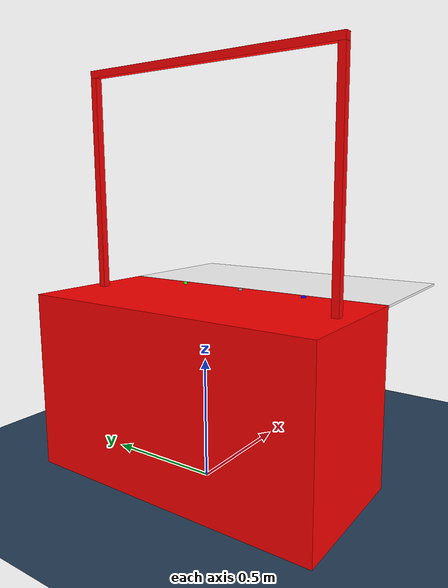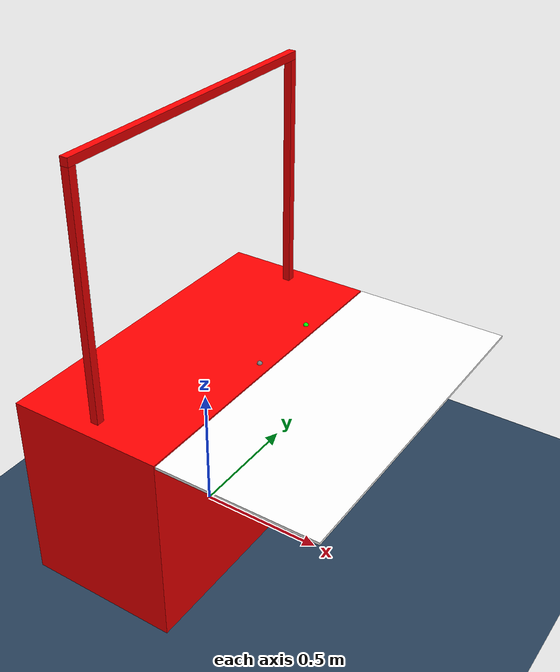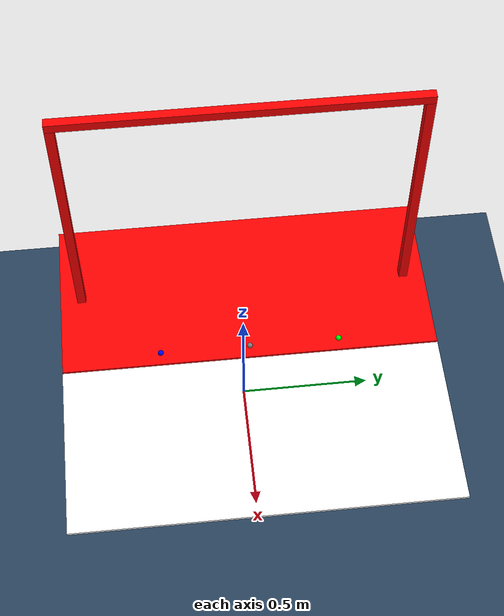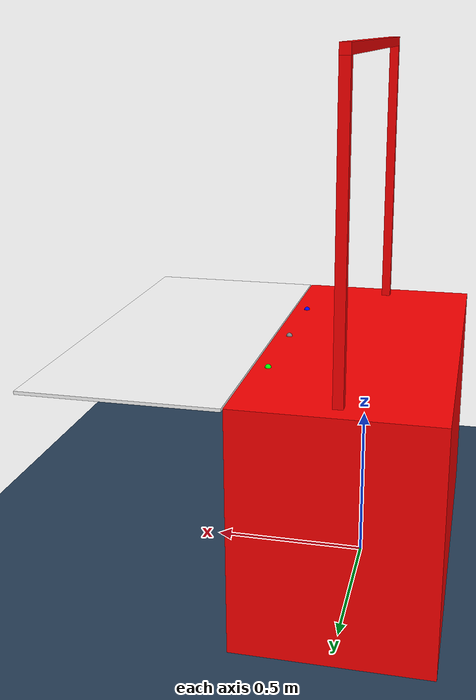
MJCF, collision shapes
<mujoco model="onshape">
  <compiler angle="radian" meshdir="assets"/>

  <visual>
    <headlight diffuse="0.6 0.6 0.6" ambient="0.3 0.3 0.3" specular="0 0 0"/>
    <rgba haze="0.15 0.25 0.35 1"/>
    <global azimuth="120" elevation="-20" offwidth="1920" offheight="1080"/>
    <scale contactwidth="0.075" contactheight="0.025" forcewidth="0.05" com="0.05" framewidth="0.01" framelength="0.2"/>
  </visual>

  <asset>
    <mesh name="base_visual_gate" file="base_visual_gate.stl"/>
    <texture type="skybox" builtin="gradient" rgb1="0.3 0.5 0.7" rgb2="0 0 0" width="512" height="3072"/>
    <texture type="2d" name="groundplane" builtin="checker" mark="edge" rgb1="0.2 0.3 0.4" rgb2="0.1 0.2 0.3"
      markrgb="0.8 0.8 0.8" width="300" height="300"/>
    <material name="groundplane" texture="groundplane" texuniform="true" texrepeat="5 5" reflectance="0.2"/>
  </asset>

  <worldbody>
    <light pos="0 0 1.5" dir="0 0 -1" directional="true"/>
    <geom name="floor" size="0 0 0.05" type="plane" material="groundplane" contype="1"/>
    <body name="table_8020" pos="0 0 0" quat="1 0 0 0">
      <geom type="mesh" contype="0" conaffinity="0" group="2" density="0" rgba="0.792157 0.819608 0.933333 1" mesh="base_visual_gate"/>
      <geom type="box" group="3" size="0.2975 0.65 0.375" pos="0 0 0.375" rgba="1 0 0 0.1"/>
      <body name="gate_collision" pos="0 0 0.75">
        <geom type="box" group="3" size="0.015 0.015 0.45" pos="0 0.575 0.45"   rgba="1 0 0 0.1"/>
        <geom type="box" group="3" size="0.015 0.015 0.45" pos="0 -0.575 0.45"   rgba="1 0 0 0.1"/>
        <geom type="box" group="3" size="0.015 0.015 0.59" pos="0 0 0.915" rgba="1 0 0 0.1" quat="1 1 0 0"/>
      </body>
      <site name="table_front_center" pos="0.2525 0 0.75" size="0.01" rgba="0.5 0.5 0.5 1"/>
      <site name="left_attach_site" pos="0.2525 0.31 0.75" size="0.01" rgba="0 1 0 1"/>
      <site name="right_attach_site" pos="0.2525 -0.31 0.75" size="0.01" rgba="0 0 1 1"/>
    </body>

    <body name="play_table" pos="0 0 0" quat="1 0 0 0">
      <geom type="box" group="2" size="0.2975 0.65 0.005" pos="0.6 0 0.745" rgba="1 1 1 1"/>
    </body>
  </worldbody>
</mujoco>
